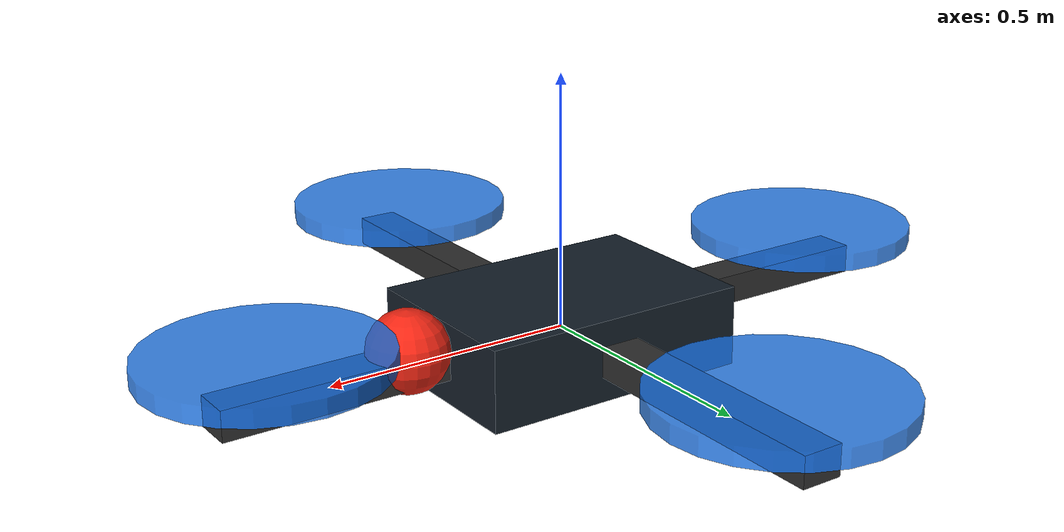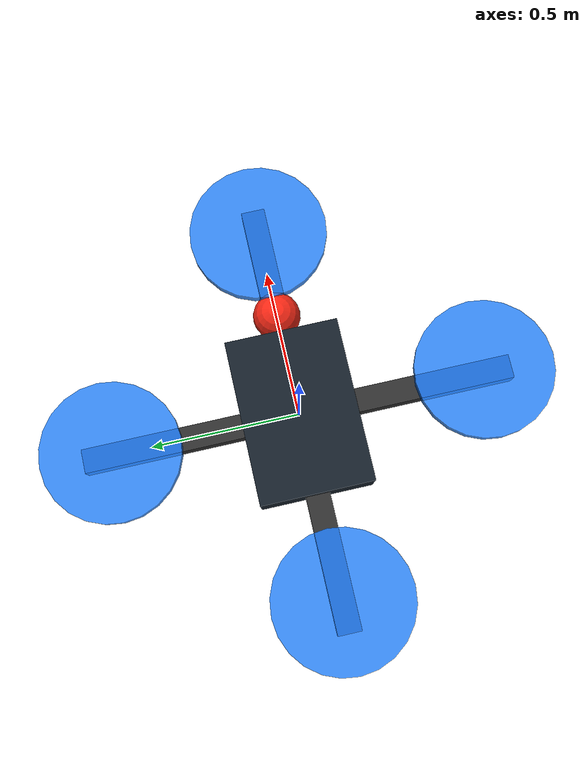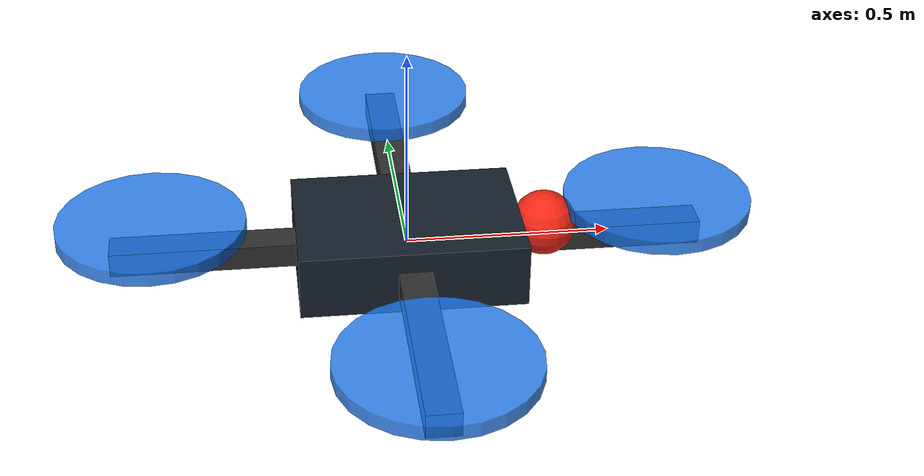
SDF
<?xml version="1.0" ?>
<sdf version="1.6">
  <model name="simple_drone">
    <static>false</static>

    <link name="body">
      <gravity>false</gravity>
      <pose>0 0 0 0 0 0</pose>
      <inertial>
        <mass>1.2</mass>
        <inertia>
          <ixx>0.05</ixx><ixy>0</ixy><ixz>0</ixz>
          <iyy>0.05</iyy><iyz>0</iyz><izz>0.08</izz>
        </inertia>
      </inertial>
      <visual name="body_visual">
        <geometry><box><size>0.55 0.38 0.16</size></box></geometry>
        <material><ambient>0.08 0.12 0.16 1</ambient><diffuse>0.08 0.12 0.16 1</diffuse></material>
      </visual>
      <collision name="body_collision">
        <geometry><box><size>0.55 0.38 0.16</size></box></geometry>
      </collision>

      <visual name="front_marker">
        <pose>0.34 0 0.03 0 0 0</pose>
        <geometry><sphere><radius>0.08</radius></sphere></geometry>
        <material><ambient>0.95 0.15 0.08 1</ambient><diffuse>0.95 0.15 0.08 1</diffuse></material>
      </visual>

      <visual name="arm_x">
        <geometry><box><size>1.45 0.08 0.06</size></box></geometry>
        <material><ambient>0.18 0.18 0.18 1</ambient><diffuse>0.18 0.18 0.18 1</diffuse></material>
      </visual>
      <visual name="arm_y">
        <geometry><box><size>0.08 1.45 0.06</size></box></geometry>
        <material><ambient>0.18 0.18 0.18 1</ambient><diffuse>0.18 0.18 0.18 1</diffuse></material>
      </visual>

      <visual name="rotor_front">
        <pose>0.62 0 0.08 0 0 0</pose>
        <geometry><cylinder><radius>0.23</radius><length>0.035</length></cylinder></geometry>
        <material><ambient>0.12 0.48 0.95 0.85</ambient><diffuse>0.12 0.48 0.95 0.85</diffuse></material>
      </visual>
      <visual name="rotor_back">
        <pose>-0.62 0 0.08 0 0 0</pose>
        <geometry><cylinder><radius>0.23</radius><length>0.035</length></cylinder></geometry>
        <material><ambient>0.12 0.48 0.95 0.85</ambient><diffuse>0.12 0.48 0.95 0.85</diffuse></material>
      </visual>
      <visual name="rotor_left">
        <pose>0 0.62 0.08 0 0 0</pose>
        <geometry><cylinder><radius>0.23</radius><length>0.035</length></cylinder></geometry>
        <material><ambient>0.12 0.48 0.95 0.85</ambient><diffuse>0.12 0.48 0.95 0.85</diffuse></material>
      </visual>
      <visual name="rotor_right">
        <pose>0 -0.62 0.08 0 0 0</pose>
        <geometry><cylinder><radius>0.23</radius><length>0.035</length></cylinder></geometry>
        <material><ambient>0.12 0.48 0.95 0.85</ambient><diffuse>0.12 0.48 0.95 0.85</diffuse></material>
      </visual>
    </link>
  </model>
</sdf>
